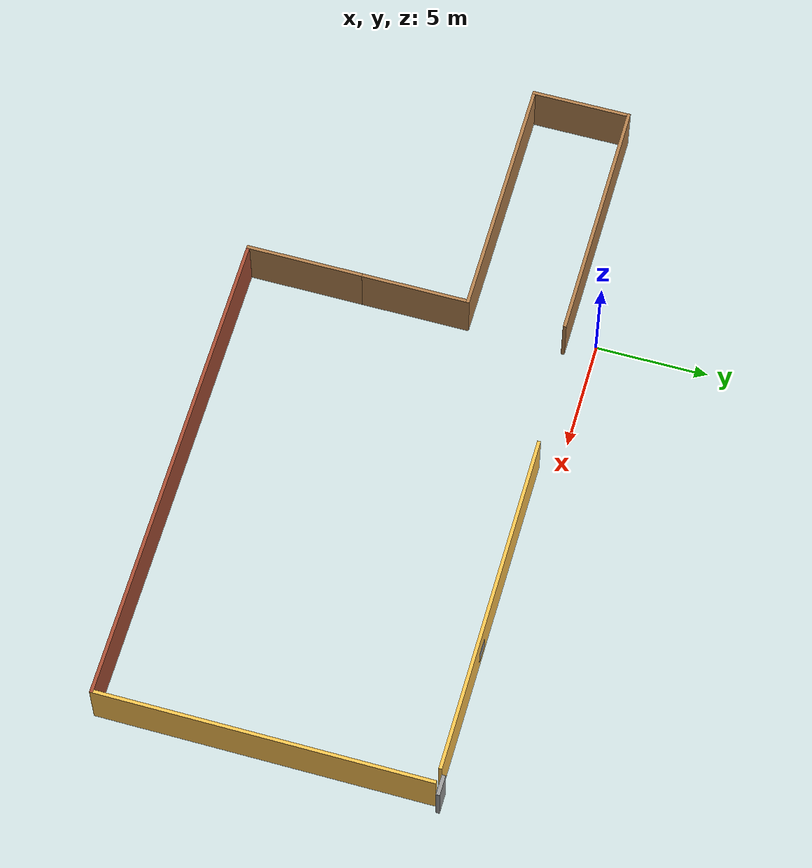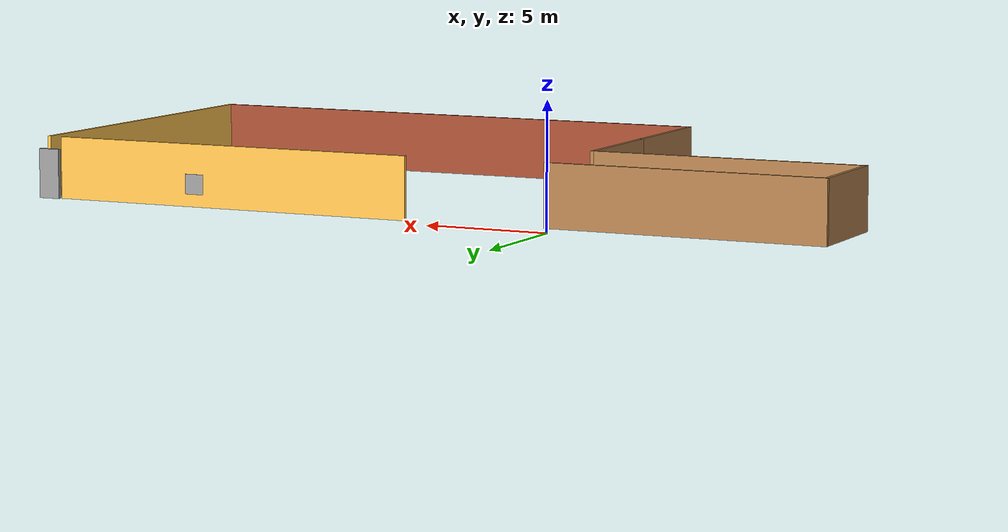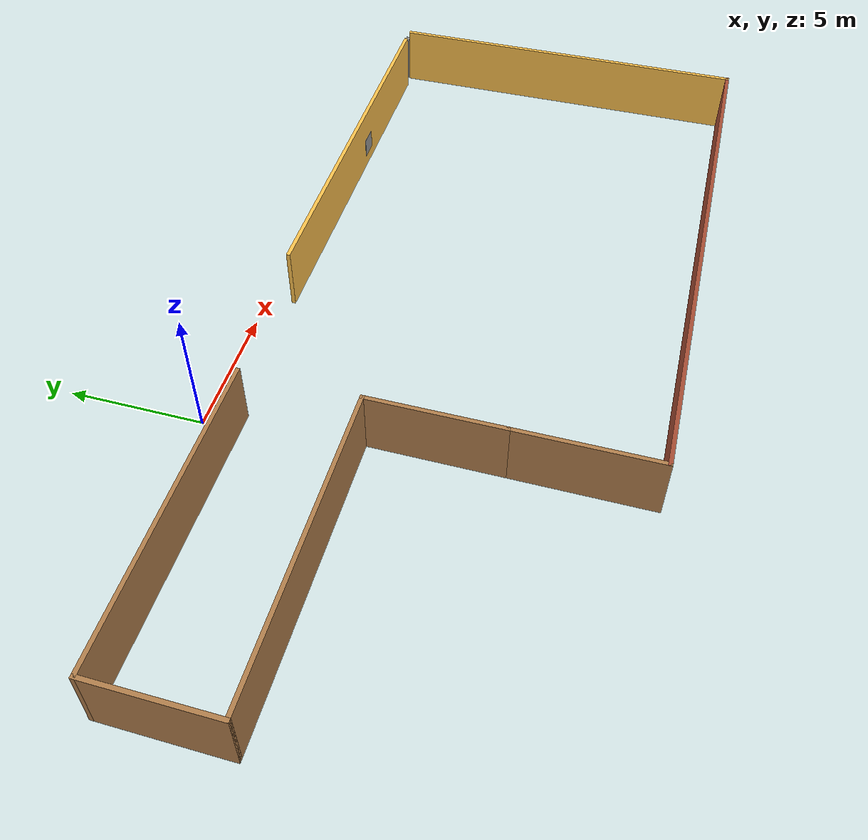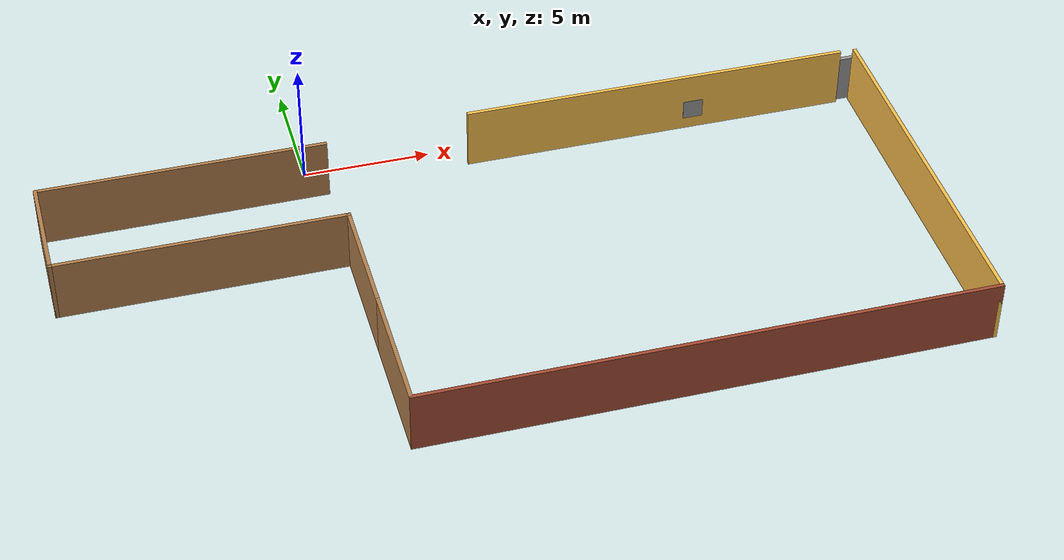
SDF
<?xml version='1.0'?>
<sdf version='1.6'>
  <model name='myBuilding'>
    <pose frame=''>6.025 -8.30286 0 0 -0 0</pose>
    <link name='Door_0'>
      <collision name='Door_0_Collision'>
        <geometry>
          <box>
            <size>0.9 0.17 2</size>
          </box>
        </geometry>
        <pose frame=''>0 0 1 0 -0 0</pose>
      </collision>
      <visual name='Door_0_Visual'>
        <pose frame=''>0 0 1 0 -0 0</pose>
        <geometry>
          <box>
            <size>0.9 0.17 2</size>
          </box>
        </geometry>
        <material>
          <script>
            <uri>file://media/materials/scripts/gazebo.material</uri>
            <name>Gazebo/Grey</name>
          </script>
        </material>
      </visual>
      <pose frame=''>16.3571 7.49805 0 0 -0 0</pose>
    </link>
    <link name='Wall_0'>
      <collision name='Wall_0_Collision'>
        <geometry>
          <box>
            <size>11.25 0.15 2.5</size>
          </box>
        </geometry>
        <pose frame=''>0 0 1.25 0 -0 0</pose>
      </collision>
      <visual name='Wall_0_Visual'>
        <pose frame=''>0 0 1.25 0 -0 0</pose>
        <geometry>
          <box>
            <size>11.25 0.15 2.5</size>
          </box>
        </geometry>
        <material>
          <script>
            <uri>file://media/materials/scripts/gazebo.material</uri>
            <name>Gazebo/Wood</name>
          </script>
          <ambient>1 1 1 1</ambient>
        </material>
        <meta>
          <layer>0</layer>
        </meta>
      </visual>
      <pose frame=''>-10.925 6.96286 0 0 -0 3.14159</pose>
    </link>
    <link name='Wall_1'>
      <collision name='Wall_1_Collision'>
        <geometry>
          <box>
            <size>4.5 0.15 2.5</size>
          </box>
        </geometry>
        <pose frame=''>0 0 1.25 0 -0 0</pose>
      </collision>
      <visual name='Wall_1_Visual'>
        <pose frame=''>0 0 1.25 0 -0 0</pose>
        <geometry>
          <box>
            <size>4.5 0.15 2.5</size>
          </box>
        </geometry>
        <material>
          <script>
            <uri>file://media/materials/scripts/gazebo.material</uri>
            <name>Gazebo/Wood</name>
          </script>
          <ambient>1 1 1 1</ambient>
        </material>
        <meta>
          <layer>0</layer>
        </meta>
      </visual>
      <pose frame=''>-16.475 4.78786 0 0 0 -1.5708</pose>
    </link>
    <link name='Wall_2'>
      <collision name='Wall_2_Collision'>
        <geometry>
          <box>
            <size>11.25 0.15 2.5</size>
          </box>
        </geometry>
        <pose frame=''>0 0 1.25 0 -0 0</pose>
      </collision>
      <visual name='Wall_2_Visual'>
        <pose frame=''>0 0 1.25 0 -0 0</pose>
        <geometry>
          <box>
            <size>11.25 0.15 2.5</size>
          </box>
        </geometry>
        <material>
          <script>
            <uri>file://media/materials/scripts/gazebo.material</uri>
            <name>Gazebo/Wood</name>
          </script>
          <ambient>1 1 1 1</ambient>
        </material>
        <meta>
          <layer>0</layer>
        </meta>
      </visual>
      <pose frame=''>-10.925 2.61286 0 0 -0 0</pose>
    </link>
    <link name='Wall_3'>
      <collision name='Wall_3_Collision'>
        <geometry>
          <box>
            <size>5 0.15 2.5</size>
          </box>
        </geometry>
        <pose frame=''>0 0 1.25 0 -0 0</pose>
      </collision>
      <visual name='Wall_3_Visual'>
        <pose frame=''>0 0 1.25 0 -0 0</pose>
        <geometry>
          <box>
            <size>5 0.15 2.5</size>
          </box>
        </geometry>
        <material>
          <script>
            <uri>file://media/materials/scripts/gazebo.material</uri>
            <name>Gazebo/Wood</name>
          </script>
          <ambient>1 1 1 1</ambient>
        </material>
        <meta>
          <layer>0</layer>
        </meta>
      </visual>
      <pose frame=''>-5.375 0.187858 0 0 0 -1.5708</pose>
    </link>
    <link name='Wall_4'>
      <collision name='Wall_4_Collision'>
        <geometry>
          <box>
            <size>5.25 0.15 2.5</size>
          </box>
        </geometry>
        <pose frame=''>0 0 1.25 0 -0 0</pose>
      </collision>
      <visual name='Wall_4_Visual'>
        <pose frame=''>0 0 1.25 0 -0 0</pose>
        <geometry>
          <box>
            <size>5.25 0.15 2.5</size>
          </box>
        </geometry>
        <material>
          <script>
            <uri>file://media/materials/scripts/gazebo.material</uri>
            <name>Gazebo/Wood</name>
          </script>
          <ambient>1 1 1 1</ambient>
        </material>
        <meta>
          <layer>0</layer>
        </meta>
      </visual>
      <pose frame=''>-5.375 -4.78714 0 0 0 -1.5708</pose>
    </link>
    <link name='Wall_5'>
      <collision name='Wall_5_Collision'>
        <geometry>
          <box>
            <size>22 0.15 2.5</size>
          </box>
        </geometry>
        <pose frame=''>0 0 1.25 0 -0 0</pose>
      </collision>
      <visual name='Wall_5_Visual'>
        <pose frame=''>0 0 1.25 0 -0 0</pose>
        <geometry>
          <box>
            <size>22 0.15 2.5</size>
          </box>
        </geometry>
        <material>
          <script>
            <uri>file://media/materials/scripts/gazebo.material</uri>
            <name>Gazebo/Bricks</name>
          </script>
          <ambient>1 1 1 1</ambient>
        </material>
        <meta>
          <layer>0</layer>
        </meta>
      </visual>
      <pose frame=''>5.55 -7.33714 0 0 -0 0</pose>
    </link>
    <link name='Wall_6'>
      <collision name='Wall_6_Collision'>
        <geometry>
          <box>
            <size>14.75 0.15 2.5</size>
          </box>
        </geometry>
        <pose frame=''>0 0 1.25 0 -0 0</pose>
      </collision>
      <visual name='Wall_6_Visual'>
        <pose frame=''>0 0 1.25 0 -0 0</pose>
        <geometry>
          <box>
            <size>14.75 0.15 2.5</size>
          </box>
        </geometry>
        <material>
          <script>
            <uri>file://media/materials/scripts/gazebo.material</uri>
            <name>Gazebo/Grey</name>
          </script>
          <ambient>1 0.764706 0.305882 1</ambient>
        </material>
        <meta>
          <layer>0</layer>
        </meta>
      </visual>
      <pose frame=''>16.475 -0.037143 0 0 -0 1.5708</pose>
    </link>
    <link name='Wall_8'>
      <collision name='Wall_8_Collision'>
        <geometry>
          <box>
            <size>15.5 0.15 2.5</size>
          </box>
        </geometry>
        <pose frame=''>0 0 1.25 0 -0 0</pose>
      </collision>
      <visual name='Wall_8_Visual'>
        <pose frame=''>0 0 1.25 0 -0 0</pose>
        <geometry>
          <box>
            <size>15.5 0.15 2.5</size>
          </box>
        </geometry>
        <material>
          <script>
            <uri>file://media/materials/scripts/gazebo.material</uri>
            <name>Gazebo/Grey</name>
          </script>
          <ambient>1 0.764706 0.305882 1</ambient>
        </material>
        <meta>
          <layer>0</layer>
        </meta>
      </visual>
      <pose frame=''>8.11897 7.33714 0 0 -0 3.14159</pose>
    </link>
    <link name='Window_0'>
      <collision name='Window_0_Collision'>
        <geometry>
          <box>
            <size>0.8 0.17 0.8</size>
          </box>
        </geometry>
        <pose frame=''>0 0 0.4 0 -0 0</pose>
      </collision>
      <visual name='Window_0_Visual'>
        <pose frame=''>0 0 0.4 0 -0 0</pose>
        <geometry>
          <box>
            <size>0.8 0.17 0.8</size>
          </box>
        </geometry>
        <material>
          <script>
            <uri>file://media/materials/scripts/gazebo.material</uri>
            <name>Gazebo/Grey</name>
          </script>
        </material>
      </visual>
      <pose frame=''>9.67944 7.33714 0.5 0 -0 0</pose>
    </link>
    <static>1</static>
  </model>
</sdf>
